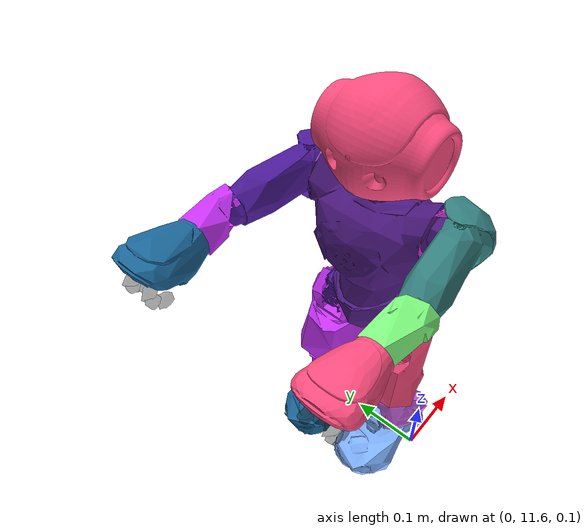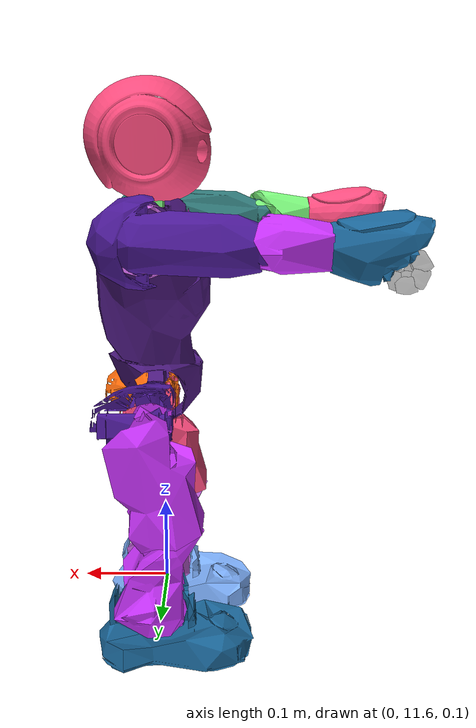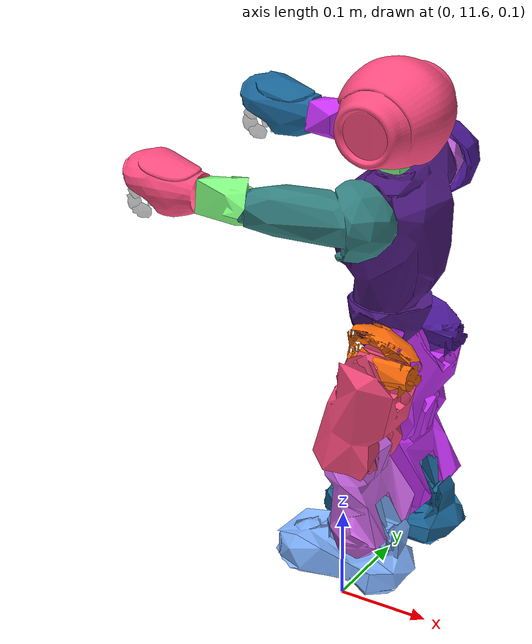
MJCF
<mujoco model="NaoH25V50">
  <compiler angle="radian" />

  <asset>
    <mesh name="HeadYaw_0.10" content_type="model/stl" file="nao_meshes/meshes/V40/HeadYaw_0.10.stl" scale="0.1 0.1 0.1" />
    <mesh name="HeadPitch_0.10" content_type="model/stl" file="nao_meshes/meshes/V40/HeadPitch_0.10.stl" scale="0.1 0.1 0.1" />
    <mesh name="LHipYawPitch_0.10" content_type="model/stl" file="nao_meshes/meshes/V40/LHipYawPitch_0.10.stl" scale="0.1 0.1 0.1" />
    <mesh name="LHipRoll_0.10" content_type="model/stl" file="nao_meshes/meshes/V40/LHipRoll_0.10.stl" scale="0.1 0.1 0.1" />
    <mesh name="LHipPitch_0.10" content_type="model/stl" file="nao_meshes/meshes/V40/LHipPitch_0.10.stl" scale="0.1 0.1 0.1" />
    <mesh name="LKneePitch_0.10" content_type="model/stl" file="nao_meshes/meshes/V40/LKneePitch_0.10.stl" scale="0.1 0.1 0.1" />
    <mesh name="LAnklePitch_0.10" content_type="model/stl" file="nao_meshes/meshes/V40/LAnklePitch_0.10.stl" scale="0.1 0.1 0.1" />
    <mesh name="LAnkleRoll_0.10" content_type="model/stl" file="nao_meshes/meshes/V40/LAnkleRoll_0.10.stl" scale="0.1 0.1 0.1" />
    <mesh name="RHipYawPitch_0.10" content_type="model/stl" file="nao_meshes/meshes/V40/RHipYawPitch_0.10.stl" scale="0.1 0.1 0.1" />
    <mesh name="RHipRoll_0.10" content_type="model/stl" file="nao_meshes/meshes/V40/RHipRoll_0.10.stl" scale="0.1 0.1 0.1" />
    <mesh name="RHipPitch_0.10" content_type="model/stl" file="nao_meshes/meshes/V40/RHipPitch_0.10.stl" scale="0.1 0.1 0.1" />
    <mesh name="RKneePitch_0.10" content_type="model/stl" file="nao_meshes/meshes/V40/RKneePitch_0.10.stl" scale="0.1 0.1 0.1" />
    <mesh name="RAnklePitch_0.10" content_type="model/stl" file="nao_meshes/meshes/V40/RAnklePitch_0.10.stl" scale="0.1 0.1 0.1" />
    <mesh name="RAnkleRoll_0.10" content_type="model/stl" file="nao_meshes/meshes/V40/RAnkleRoll_0.10.stl" scale="0.1 0.1 0.1" />
    <mesh name="Torso_0.10" content_type="model/stl" file="nao_meshes/meshes/V40/Torso_0.10.stl" scale="0.1 0.1 0.1" />
    <mesh name="LShoulderPitch_0.10" content_type="model/stl" file="nao_meshes/meshes/V40/LShoulderPitch_0.10.stl" scale="0.1 0.1 0.1" />
    <mesh name="LShoulderRoll_0.10" content_type="model/stl" file="nao_meshes/meshes/V40/LShoulderRoll_0.10.stl" scale="0.1 0.1 0.1" />
    <mesh name="LElbowRoll_0.10" content_type="model/stl" file="nao_meshes/meshes/V40/LElbowRoll_0.10.stl" scale="0.1 0.1 0.1" />
    <mesh name="LWristYaw_0.10" content_type="model/stl" file="nao_meshes/meshes/V40/LWristYaw_0.10.stl" scale="0.1 0.1 0.1" />
    <mesh name="RShoulderPitch_0.10" content_type="model/stl" file="nao_meshes/meshes/V40/RShoulderPitch_0.10.stl" scale="0.1 0.1 0.1" />
    <mesh name="RShoulderRoll_0.10" content_type="model/stl" file="nao_meshes/meshes/V40/RShoulderRoll_0.10.stl" scale="0.1 0.1 0.1" />
    <mesh name="RElbowRoll_0.10" content_type="model/stl" file="nao_meshes/meshes/V40/RElbowRoll_0.10.stl" scale="0.1 0.1 0.1" />
    <mesh name="RWristYaw_0.10" content_type="model/stl" file="nao_meshes/meshes/V40/RWristYaw_0.10.stl" scale="0.1 0.1 0.1" />
    <mesh name="RFinger13_0.10" content_type="model/stl" file="nao_meshes/meshes/V40/RFinger13_0.10.stl" scale="0.1 0.1 0.1" />
    <mesh name="RFinger12_0.10" content_type="model/stl" file="nao_meshes/meshes/V40/RFinger12_0.10.stl" scale="0.1 0.1 0.1" />
    <mesh name="LFinger21_0.10" content_type="model/stl" file="nao_meshes/meshes/V40/LFinger21_0.10.stl" scale="0.1 0.1 0.1" />
    <mesh name="LFinger13_0.10" content_type="model/stl" file="nao_meshes/meshes/V40/LFinger13_0.10.stl" scale="0.1 0.1 0.1" />
    <mesh name="LFinger11_0.10" content_type="model/stl" file="nao_meshes/meshes/V40/LFinger11_0.10.stl" scale="0.1 0.1 0.1" />
    <mesh name="RFinger22_0.10" content_type="model/stl" file="nao_meshes/meshes/V40/RFinger22_0.10.stl" scale="0.1 0.1 0.1" />
    <mesh name="LFinger22_0.10" content_type="model/stl" file="nao_meshes/meshes/V40/LFinger22_0.10.stl" scale="0.1 0.1 0.1" />
    <mesh name="RFinger21_0.10" content_type="model/stl" file="nao_meshes/meshes/V40/RFinger21_0.10.stl" scale="0.1 0.1 0.1" />
    <mesh name="LFinger12_0.10" content_type="model/stl" file="nao_meshes/meshes/V40/LFinger12_0.10.stl" scale="0.1 0.1 0.1" />
    <mesh name="RFinger23_0.10" content_type="model/stl" file="nao_meshes/meshes/V40/RFinger23_0.10.stl" scale="0.1 0.1 0.1" />
    <mesh name="RFinger11_0.10" content_type="model/stl" file="nao_meshes/meshes/V40/RFinger11_0.10.stl" scale="0.1 0.1 0.1" />
    <mesh name="LFinger23_0.10" content_type="model/stl" file="nao_meshes/meshes/V40/LFinger23_0.10.stl" scale="0.1 0.1 0.1" />
    <mesh name="LThumb1_0.10" content_type="model/stl" file="nao_meshes/meshes/V40/LThumb1_0.10.stl" scale="0.1 0.1 0.1" />
    <mesh name="RThumb1_0.10" content_type="model/stl" file="nao_meshes/meshes/V40/RThumb1_0.10.stl" scale="0.1 0.1 0.1" />
    <mesh name="RThumb2_0.10" content_type="model/stl" file="nao_meshes/meshes/V40/RThumb2_0.10.stl" scale="0.1 0.1 0.1" />
    <mesh name="LThumb2_0.10" content_type="model/stl" file="nao_meshes/meshes/V40/LThumb2_0.10.stl" scale="0.1 0.1 0.1" />
  </asset>

  <worldbody>
    <body name="nao_humanoid_C_UAID_047C163BA5E72CC302_2099765344__root" pos="4.263256414560601e-16 11.699999996839422 0.4397136615288111" quat="1.2167962698709443e-08 0 0 -0.9999999999999999"><freejoint name="nao_humanoid_C_UAID_047C163BA5E72CC302_2099765344_freejoint" /><geom type="mesh" contype="0" conaffinity="0" group="1" density="0" rgba="0.3 0.1 0.5 1" mesh="Torso_0.10" />
    <geom type="mesh" rgba="0.3 0.1 0.5 1" mesh="Torso_0.10" />
    <body name="Neck" pos="0 0 0.1265">
      <inertial pos="-1e-05 0 -0.02742" quat="0.70765 -0.00173495 0.00151894 0.706559" mass="0.07842" diaginertia="1.70396e-05 1.60324e-05 5.53348e-06" />
      <joint name="HeadYaw" pos="0 0 0" axis="0 0 1" range="-2.08567 2.08567" actuatorfrcrange="-1.547 1.547" />
      <geom type="mesh" contype="0" conaffinity="0" group="1" density="0" rgba="0.5 1 0.5 1" mesh="HeadYaw_0.10" />
      <geom type="mesh" rgba="0.5 1 0.5 1" mesh="HeadYaw_0.10" />
      <body name="Head">
        <inertial pos="-0.00112 0 0.05258" quat="0.463877 0.585354 -0.492966 0.446277" mass="0.60533" diaginertia="0.000990592 0.000957952 0.000811033" />
        <joint name="HeadPitch" pos="0 0 0" axis="0 1 0" range="-0.671952 0.514872" actuatorfrcrange="-1.532 1.532" />
        <geom type="mesh" contype="0" conaffinity="0" group="1" density="0" rgba="1 0.3 0.5 1" mesh="HeadPitch_0.10" />
        <geom type="mesh" rgba="1 0.3 0.5 1" mesh="HeadPitch_0.10" />
      </body>
    </body>
    <body name="LPelvis" pos="0 0.05 -0.085">
      <inertial pos="-0.00781 -0.01114 0.02661" quat="0.232303 0.656505 0.182148 0.69416" mass="0.06981" diaginertia="5.16414e-05 4.58792e-05 2.32239e-05" />
      <joint name="LHipYawPitch" pos="0 0 0" axis="0 0.707107 -0.707107" range="-1.14529 0.740718" actuatorfrcrange="-3.348 3.348" />
      <geom type="mesh" contype="0" conaffinity="0" group="1" density="0" rgba="1 0.423529 0.0392157 1" mesh="LHipYawPitch_0.10" />
      <geom type="mesh" rgba="1 0.423529 0.0392157 1" mesh="LHipYawPitch_0.10" />
      <body name="LHip">
        <inertial pos="-0.01549 0.00029 -0.00515" quat="0.453959 0.527953 0.574067 0.430853" mass="0.14053" diaginertia="6.08587e-05 5.59269e-05 2.22526e-05" />
        <joint name="LHipRoll" pos="0 0 0" axis="1 0 0" range="-0.379435 0.79046" actuatorfrcrange="-3.348 3.348" />
        <geom type="mesh" contype="0" conaffinity="0" group="1" density="0" rgba="1 0.423529 0.0392157 1" mesh="LHipRoll_0.10" />
        <geom type="mesh" rgba="1 0.423529 0.0392157 1" mesh="LHipRoll_0.10" />
        <body name="LThigh">
          <inertial pos="0.00138 0.00221 -0.05373" quat="0.992078 -0.0228023 -0.123519 -0.00190301" mass="0.38968" diaginertia="0.000524114 0.000465732 0.000286453" />
          <joint name="LHipPitch" pos="0 0 0" axis="0 1 0" range="-1.53589 0.48398" actuatorfrcrange="-3.023 3.023" />
          <geom type="mesh" contype="0" conaffinity="0" group="1" density="0" rgba="1 0.3 0.5 1" mesh="LHipPitch_0.10" />
          <geom type="mesh" rgba="1 0.3 0.5 1" mesh="LHipPitch_0.10" />
          <body name="LTibia" pos="0 0 -0.1">
            <inertial pos="0.00453 0.00225 -0.04936" quat="0.997907 0.0169027 0.0579417 0.0232071" mass="0.30142" diaginertia="0.000449928 0.000388139 0.000181704" />
            <joint name="LKneePitch" pos="0 0 0" axis="0 1 0" range="-0.0923279 2.11255" actuatorfrcrange="-3.023 3.023" />
            <geom type="mesh" contype="0" conaffinity="0" group="1" density="0" rgba="0.8 0.4 0.9 1" mesh="LKneePitch_0.10" />
            <geom type="mesh" rgba="0.8 0.4 0.9 1" mesh="LKneePitch_0.10" />
            <body name="LAnklePitch" pos="0 0 -0.1029">
              <inertial pos="0.00045 0.00029 0.00685" quat="0.447256 0.548803 0.537287 0.458368" mass="0.13416" diaginertia="6.79494e-05 5.56016e-05 3.14223e-05" />
              <joint name="LAnklePitch" pos="0 0 0" axis="0 1 0" range="-1.18944 0.922581" actuatorfrcrange="-3.023 3.023" />
              <geom type="mesh" contype="0" conaffinity="0" group="1" density="0" rgba="0.5 0.7 1 1" mesh="LAnklePitch_0.10" />
              <geom type="mesh" rgba="0.5 0.7 1 1" mesh="LAnklePitch_0.10" />
              <body name="l_ankle">
                <inertial pos="0.0254198 0.00330005 -0.0323906" quat="0.0134363 0.704739 -0.00974782 0.709273" mass="0.171848" diaginertia="0.000412891 0.000353334 8.70025e-05" />
                <joint name="LAnkleRoll" pos="0 0 0" axis="1 0 0" range="-0.397761 0.768992" actuatorfrcrange="-3.348 3.348" />
                <geom type="mesh" contype="0" conaffinity="0" group="1" density="0" rgba="0.5 0.7 1 1" mesh="LAnkleRoll_0.10" />
                <geom type="mesh" rgba="0.5 0.7 1 1" mesh="LAnkleRoll_0.10" />
                <geom size="0.005 0.005 0.0025" pos="0.07025 -0.0231 -0.04511" type="box" />
                <geom size="0.005 0.005 0.0025" pos="-0.02965 -0.0191 -0.04511" type="box" />
                <geom size="0.005 0.005 0.0025" pos="0.07025 0.0299 -0.04511" type="box" />
                <geom size="0.005 0.005 0.0025" pos="-0.03025 0.0299 -0.04511" type="box" />
              </body>
            </body>
          </body>
        </body>
      </body>
    </body>
    <body name="RPelvis" pos="0 -0.05 -0.085">
      <inertial pos="-0.00781 0.01114 0.02661" quat="-0.286295 0.637526 -0.200888 0.686469" mass="0.06981" diaginertia="6.0003e-05 4.60859e-05 3.15895e-05" />
      <joint name="RHipYawPitch" pos="0 0 0" axis="0 0.707107 0.707107" range="-1.14529 0.740718" actuatorfrcrange="-3.348 3.348" />
      <geom type="mesh" contype="0" conaffinity="0" group="1" density="0" rgba="0.3 0.1 0.6 1" mesh="RHipYawPitch_0.10" />
      <geom type="mesh" rgba="0.3 0.1 0.6 1" mesh="RHipYawPitch_0.10" />
      <body name="RHip">
        <inertial pos="-0.01549 -0.00029 -0.00515" quat="0.431269 0.573083 0.528698 0.453941" mass="0.14053" diaginertia="6.08554e-05 5.59208e-05 2.2268e-05" />
        <joint name="RHipRoll" pos="0 0 0" axis="1 0 0" range="-0.79046 0.379435" actuatorfrcrange="-3.348 3.348" />
        <geom type="mesh" contype="0" conaffinity="0" group="1" density="0" rgba="0.3 0.1 0.6 1" mesh="RHipRoll_0.10" />
        <geom type="mesh" rgba="0.3 0.1 0.6 1" mesh="RHipRoll_0.10" />
        <body name="RThigh">
          <inertial pos="0.00138 -0.00221 -0.05373" quat="0.99203 0.0205489 -0.124311 0.000726212" mass="0.38968" diaginertia="0.000525121 0.000466802 0.000286518" />
          <joint name="RHipPitch" pos="0 0 0" axis="0 1 0" range="-1.53589 0.48398" actuatorfrcrange="-3.0226 3.0226" />
          <geom type="mesh" contype="0" conaffinity="0" group="1" density="0" rgba="0.8 0.2 1 1" mesh="RHipPitch_0.10" />
          <geom type="mesh" rgba="0.8 0.2 1 1" mesh="RHipPitch_0.10" />
          <body name="RTibia" pos="0 0 -0.1">
            <inertial pos="0.00453 -0.00225 -0.04936" quat="0.99698 -0.0149083 0.0724691 -0.0235809" mass="0.30142" diaginertia="0.000452851 0.000387699 0.000177824" />
            <joint name="RKneePitch" pos="0 0 0" axis="0 1 0" range="-0.0923279 2.11255" actuatorfrcrange="-3.0226 3.0226" />
            <geom type="mesh" contype="0" conaffinity="0" group="1" density="0" rgba="0.8 0.2 1 1" mesh="RKneePitch_0.10" />
            <geom type="mesh" rgba="0.8 0.2 1 1" mesh="RKneePitch_0.10" />
            <body name="RAnklePitch" pos="0 0 -0.1029">
              <inertial pos="0.00045 -0.00029 0.00685" quat="0.458219 0.537985 0.54818 0.447332" mass="0.13416" diaginertia="6.79942e-05 5.56532e-05 3.14175e-05" />
              <joint name="RAnklePitch" pos="0 0 0" axis="0 1 0" range="-1.1863 0.932006" actuatorfrcrange="-3.0226 3.0226" />
              <geom type="mesh" contype="0" conaffinity="0" group="1" density="0" rgba="0.1 0.4 0.6 1" mesh="RAnklePitch_0.10" />
              <geom type="mesh" rgba="0.1 0.4 0.6 1" mesh="RAnklePitch_0.10" />
              <body name="r_ankle">
                <inertial pos="0.0254198 -0.00330005 -0.0323906" quat="-0.0138336 0.704473 0.00894574 0.70954" mass="0.171848" diaginertia="0.000412175 0.000352454 8.68701e-05" />
                <joint name="RAnkleRoll" pos="0 0 0" axis="1 0 0" range="-0.768992 0.397761" actuatorfrcrange="-3.348 3.348" />
                <geom type="mesh" contype="0" conaffinity="0" group="1" density="0" rgba="0.1 0.4 0.6 1" mesh="RAnkleRoll_0.10" />
                <geom type="mesh" rgba="0.1 0.4 0.6 1" mesh="RAnkleRoll_0.10" />
                <geom size="0.005 0.005 0.0025" pos="-0.03025 0.0191 -0.04511" type="box" />
                <geom size="0.005 0.005 0.0025" pos="-0.02965 -0.0299 -0.04511" type="box" />
                <geom size="0.005 0.005 0.0025" pos="0.07025 -0.0299 -0.04511" type="box" />
                <geom size="0.005 0.005 0.0025" pos="0.07025 0.0231 -0.04511" type="box" />
              </body>
            </body>
          </body>
        </body>
      </body>
    </body>
    <body name="LShoulder" pos="0 0.098 0.1">
      <inertial pos="-0.00165 -0.02663 0.00014" quat="0.353499 0.572853 -0.442525 0.592494" mass="0.09304" diaginertia="2.02186e-05 1.91002e-05 1.30704e-05" />
      <joint name="LShoulderPitch" pos="0 0 0" axis="0 1 0" range="-2.08567 2.08567" actuatorfrcrange="-1.329 1.329" />
      <geom type="mesh" contype="0" conaffinity="0" group="1" density="0" rgba="0.8 0.2 0.8 1" mesh="LShoulderPitch_0.10" />
      <geom type="mesh" rgba="0.8 0.2 0.8 1" mesh="LShoulderPitch_0.10" />
      <body name="LBicep">
        <inertial pos="0.02455 0.00563 0.0033" quat="0.467645 0.46185 0.492756 0.570257" mass="0.15777" diaginertia="0.00027823 0.000242894 8.25818e-05" />
        <joint name="LShoulderRoll" pos="0 0 0" axis="0 0 1" range="-0.314159 1.32645" actuatorfrcrange="-1.7835 1.7835" />
        <geom type="mesh" contype="0" conaffinity="0" group="1" density="0" rgba="0.2 0.5 0.5 1" mesh="LShoulderRoll_0.10" />
        <geom type="mesh" rgba="0.2 0.5 0.5 1" mesh="LShoulderRoll_0.10" />
        <body name="LElbow" pos="0.105 0.015 0">
          <inertial pos="-0.02744 0 -0.00014" quat="-0.000545392 0.711779 -0.000696018 0.702403" mass="0.06483" diaginertia="2.76333e-05 2.66179e-05 5.592e-06" />
          <joint name="LElbowYaw" pos="0 0 0" axis="1 0 0" range="-2.08567 2.08567" actuatorfrcrange="-1.547 1.547" />
          <body name="LForeArm">
            <inertial pos="0.02556 0.00281 0.00076" quat="0.481839 0.619088 0.422287 0.454131" mass="0.07761" diaginertia="3.9183e-05 3.6083e-05 2.37632e-05" />
            <joint name="LElbowRoll" pos="0 0 0" axis="0 0 1" range="-1.54462 -0.0349066" actuatorfrcrange="-1.532 1.532" />
            <geom type="mesh" contype="0" conaffinity="0" group="1" density="0" rgba="0.5 1 0.5 1" mesh="LElbowRoll_0.10" />
            <geom type="mesh" rgba="0.5 1 0.5 1" mesh="LElbowRoll_0.10" />
            <body name="l_wrist" pos="0.05595 0 0">
              <inertial pos="0.03434 -0.00088 0.00308" quat="0.346526 0.607704 0.329318 0.634165" mass="0.18533" diaginertia="0.000137482 0.000131631 6.85194e-05" />
              <joint name="LWristYaw" pos="0 0 0" axis="1 0 0" range="-1.82387 1.82387" actuatorfrcrange="-0.4075 0.4075" />
              <geom type="mesh" contype="0" conaffinity="0" group="1" density="0" rgba="1 0.3 0.5 1" mesh="LWristYaw_0.10" />
              <geom type="mesh" rgba="1 0.3 0.5 1" mesh="LWristYaw_0.10" />
              <body name="l_gripper" pos="0.05775 0 -0.01231">
                <inertial pos="0 0 0" mass="2e-06" diaginertia="1.1e-09 1.1e-09 1.1e-09" />
                <joint name="LHand" pos="0 0 0" axis="1 0 0" range="0 1" actuatorfrcrange="-0.292 0.292" />
              </body>
              <body name="LFinger21_link" pos="0.06907 -0.01157 -0.00304" quat="0.672286 0.564114 0.308141 -0.367227">
                <inertial pos="0 0 0" mass="2e-06" diaginertia="1.1e-09 1.1e-09 1.1e-09" />
                <joint name="LFinger21" pos="0 0 0" axis="0 0 1" />
                <geom type="mesh" contype="0" conaffinity="0" group="1" density="0" rgba="0.1 0.1 0.1 0.4" mesh="LFinger21_0.10" />
                <geom type="mesh" rgba="0.1 0.1 0.1 0.4" mesh="LFinger21_0.10" />
                <body name="LFinger22_link" pos="0.01436 0 0" quat="0.877607 0 0 -0.479381">
                  <inertial pos="0 0 0" mass="2e-06" diaginertia="1.1e-09 1.1e-09 1.1e-09" />
                  <joint name="LFinger22" pos="0 0 0" axis="0 0 1" />
                  <geom type="mesh" contype="0" conaffinity="0" group="1" density="0" rgba="0.1 0.1 0.1 0.4" mesh="LFinger22_0.10" />
                  <geom type="mesh" rgba="0.1 0.1 0.1 0.4" mesh="LFinger22_0.10" />
                  <body name="LFinger23_link" pos="0.01436 0 0" quat="0.877607 0 0 -0.479381">
                    <inertial pos="0 0 0" mass="2e-06" diaginertia="1.1e-09 1.1e-09 1.1e-09" />
                    <joint name="LFinger23" pos="0 0 0" axis="0 0 1" />
                    <geom type="mesh" contype="0" conaffinity="0" group="1" density="0" rgba="0.1 0.1 0.1 0.4" mesh="LFinger23_0.10" />
                    <geom type="mesh" rgba="0.1 0.1 0.1 0.4" mesh="LFinger23_0.10" />
                  </body>
                </body>
              </body>
              <body name="LFinger11_link" pos="0.06907 0.01157 -0.00304" quat="0.564115 0.672285 0.367228 -0.30814">
                <inertial pos="0 0 0" mass="2e-06" diaginertia="1.1e-09 1.1e-09 1.1e-09" />
                <joint name="LFinger11" pos="0 0 0" axis="0 0 1" />
                <geom type="mesh" contype="0" conaffinity="0" group="1" density="0" rgba="0.1 0.1 0.1 0.4" mesh="LFinger11_0.10" />
                <geom type="mesh" rgba="0.1 0.1 0.1 0.4" mesh="LFinger11_0.10" />
                <body name="LFinger12_link" pos="0.01436 0 0" quat="0.877607 0 0 -0.479381">
                  <inertial pos="0 0 0" mass="2e-06" diaginertia="1.1e-09 1.1e-09 1.1e-09" />
                  <joint name="LFinger12" pos="0 0 0" axis="0 0 1" />
                  <geom type="mesh" contype="0" conaffinity="0" group="1" density="0" rgba="0.1 0.1 0.1 0.4" mesh="LFinger12_0.10" />
                  <geom type="mesh" rgba="0.1 0.1 0.1 0.4" mesh="LFinger12_0.10" />
                  <body name="LFinger13_link" pos="0.01436 0 0" quat="0.877607 0 0 -0.479381">
                    <inertial pos="0 0 0" mass="2e-06" diaginertia="1.1e-09 1.1e-09 1.1e-09" />
                    <joint name="LFinger13" pos="0 0 0" axis="0 0 1" />
                    <geom type="mesh" contype="0" conaffinity="0" group="1" density="0" rgba="0.1 0.1 0.1 0.4" mesh="LFinger13_0.10" />
                    <geom type="mesh" rgba="0.1 0.1 0.1 0.4" mesh="LFinger13_0.10" />
                  </body>
                </body>
              </body>
              <body name="LThumb1_link" pos="0.04895 0 -0.02638" quat="0.706908 -0.70691 0.0167209 0.016721">
                <inertial pos="0 0 0" mass="2e-06" diaginertia="1.1e-09 1.1e-09 1.1e-09" />
                <joint name="LThumb1" pos="0 0 0" axis="0 0 1" />
                <geom type="mesh" contype="0" conaffinity="0" group="1" density="0" rgba="0.1 0.1 0.1 0.4" mesh="LThumb1_0.10" />
                <geom type="mesh" rgba="0.1 0.1 0.1 0.4" mesh="LThumb1_0.10" />
                <body name="LThumb2_link" pos="0.01436 0 0" quat="0.877607 0 0 -0.479381">
                  <inertial pos="0 0 0" mass="2e-06" diaginertia="1.1e-09 1.1e-09 1.1e-09" />
                  <joint name="LThumb2" pos="0 0 0" axis="0 0 1" />
                  <geom type="mesh" contype="0" conaffinity="0" group="1" density="0" rgba="0.1 0.1 0.1 0.4" mesh="LThumb2_0.10" />
                  <geom type="mesh" rgba="0.1 0.1 0.1 0.4" mesh="LThumb2_0.10" />
                </body>
              </body>
            </body>
          </body>
        </body>
      </body>
    </body>
    <body name="RShoulder" pos="0 -0.098 0.1">
      <inertial pos="-0.00165 0.02663 0.00014" quat="0.572853 0.353499 -0.592494 0.442525" mass="0.09304" diaginertia="2.02186e-05 1.91002e-05 1.30704e-05" />
      <joint name="RShoulderPitch" pos="0 0 0" axis="0 1 0" range="-2.08567 2.08567" actuatorfrcrange="-1.329 1.329" />
      <geom type="mesh" contype="0" conaffinity="0" group="1" density="0" rgba="0.8 0.4 0.9 1" mesh="RShoulderPitch_0.10" />
      <geom type="mesh" rgba="0.8 0.4 0.9 1" mesh="RShoulderPitch_0.10" />
      <body name="RBicep">
        <inertial pos="0.02455 -0.00563 0.0033" quat="0.556969 0.570609 0.359404 0.484788" mass="0.15777" diaginertia="0.000287934 0.00025515 8.56154e-05" />
        <joint name="RShoulderRoll" pos="0 0 0" axis="0 0 1" range="-1.32645 0.314159" actuatorfrcrange="-1.783 1.783" />
        <geom type="mesh" contype="0" conaffinity="0" group="1" density="0" rgba="0.3 0.1 0.6 1" mesh="RShoulderRoll_0.10" />
        <geom type="mesh" rgba="0.3 0.1 0.6 1" mesh="RShoulderRoll_0.10" />
        <body name="RElbow" pos="0.105 -0.015 0">
          <inertial pos="-0.02744 0 -0.00014" quat="-0.000545392 0.711779 -0.000696018 0.702403" mass="0.06483" diaginertia="2.76333e-05 2.66179e-05 5.592e-06" />
          <joint name="RElbowYaw" pos="0 0 0" axis="1 0 0" range="-2.08567 2.08567" actuatorfrcrange="-1.547 1.547" />
          <body name="RForeArm">
            <inertial pos="0.02556 -0.00281 0.00076" quat="0.453039 0.428011 0.593606 0.509111" mass="0.07761" diaginertia="3.92326e-05 3.59586e-05 2.39457e-05" />
            <joint name="RElbowRoll" pos="0 0 0" axis="0 0 1" range="0.0349066 1.54462" actuatorfrcrange="-1.532 1.532" />
            <geom type="mesh" contype="0" conaffinity="0" group="1" density="0" rgba="0.8 0.2 1 1" mesh="RElbowRoll_0.10" />
            <geom type="mesh" rgba="0.8 0.2 1 1" mesh="RElbowRoll_0.10" />
            <body name="r_wrist" pos="0.05595 0 0">
              <inertial pos="0.03434 0.00088 0.00308" quat="0.422432 0.617987 0.303847 0.589339" mass="0.18533" diaginertia="0.000139307 0.000131711 6.66137e-05" />
              <joint name="RWristYaw" pos="0 0 0" axis="1 0 0" range="-1.82387 1.82387" actuatorfrcrange="-0.4075 0.4075" />
              <geom type="mesh" contype="0" conaffinity="0" group="1" density="0" rgba="0.1 0.4 0.6 1" mesh="RWristYaw_0.10" />
              <geom type="mesh" rgba="0.1 0.4 0.6 1" mesh="RWristYaw_0.10" />
              <body name="r_gripper" pos="0.05775 0 -0.01213">
                <inertial pos="0 0 0" mass="2e-06" diaginertia="1.1e-09 1.1e-09 1.1e-09" />
                <joint name="RHand" pos="0 0 0" axis="1 0 0" range="0 1" actuatorfrcrange="-0.292 0.292" />
              </body>
              <body name="RFinger21_link" pos="0.06907 -0.01157 -0.00304" quat="0.672286 0.564114 0.308141 -0.367227">
                <inertial pos="0 0 0" mass="2e-06" diaginertia="1.1e-09 1.1e-09 1.1e-09" />
                <joint name="RFinger21" pos="0 0 0" axis="0 0 1" />
                <geom type="mesh" contype="0" conaffinity="0" group="1" density="0" rgba="0.1 0.1 0.1 0.4" mesh="RFinger21_0.10" />
                <geom type="mesh" rgba="0.1 0.1 0.1 0.4" mesh="RFinger21_0.10" />
                <body name="RFinger22_link" pos="0.01436 0 0" quat="0.877607 0 0 -0.479381">
                  <inertial pos="0 0 0" mass="2e-06" diaginertia="1.1e-09 1.1e-09 1.1e-09" />
                  <joint name="RFinger22" pos="0 0 0" axis="0 0 1" />
                  <geom type="mesh" contype="0" conaffinity="0" group="1" density="0" rgba="0.1 0.1 0.1 0.4" mesh="RFinger22_0.10" />
                  <geom type="mesh" rgba="0.1 0.1 0.1 0.4" mesh="RFinger22_0.10" />
                  <body name="RFinger23_link" pos="0.01436 0 0" quat="0.877607 0 0 -0.479381">
                    <inertial pos="0 0 0" mass="2e-06" diaginertia="1.1e-09 1.1e-09 1.1e-09" />
                    <joint name="RFinger23" pos="0 0 0" axis="0 0 1" />
                    <geom type="mesh" contype="0" conaffinity="0" group="1" density="0" rgba="0.1 0.1 0.1 0.4" mesh="RFinger23_0.10" />
                    <geom type="mesh" rgba="0.1 0.1 0.1 0.4" mesh="RFinger23_0.10" />
                  </body>
                </body>
              </body>
              <body name="RFinger11_link" pos="0.06907 0.01157 -0.00304" quat="0.564115 0.672285 0.367228 -0.30814">
                <inertial pos="0 0 0" mass="2e-06" diaginertia="1.1e-09 1.1e-09 1.1e-09" />
                <joint name="RFinger11" pos="0 0 0" axis="0 0 1" />
                <geom type="mesh" contype="0" conaffinity="0" group="1" density="0" rgba="0.1 0.1 0.1 0.4" mesh="RFinger11_0.10" />
                <geom type="mesh" rgba="0.1 0.1 0.1 0.4" mesh="RFinger11_0.10" />
                <body name="RFinger12_link" pos="0.01436 0 0" quat="0.877607 0 0 -0.479381">
                  <inertial pos="0 0 0" mass="2e-06" diaginertia="1.1e-09 1.1e-09 1.1e-09" />
                  <joint name="RFinger12" pos="0 0 0" axis="0 0 1" />
                  <geom type="mesh" contype="0" conaffinity="0" group="1" density="0" rgba="0.1 0.1 0.1 0.4" mesh="RFinger12_0.10" />
                  <geom type="mesh" rgba="0.1 0.1 0.1 0.4" mesh="RFinger12_0.10" />
                  <body name="RFinger13_link" pos="0.01436 0 0" quat="0.877607 0 0 -0.479381">
                    <inertial pos="0 0 0" mass="2e-06" diaginertia="1.1e-09 1.1e-09 1.1e-09" />
                    <joint name="RFinger13" pos="0 0 0" axis="0 0 1" />
                    <geom type="mesh" contype="0" conaffinity="0" group="1" density="0" rgba="0.1 0.1 0.1 0.4" mesh="RFinger13_0.10" />
                    <geom type="mesh" rgba="0.1 0.1 0.1 0.4" mesh="RFinger13_0.10" />
                  </body>
                </body>
              </body>
              <body name="RThumb1_link" pos="0.04895 0 -0.02638" quat="0.706908 -0.70691 0.0167209 0.016721">
                <inertial pos="0 0 0" mass="2e-06" diaginertia="1.1e-09 1.1e-09 1.1e-09" />
                <joint name="RThumb1" pos="0 0 0" axis="0 0 1" />
                <geom type="mesh" contype="0" conaffinity="0" group="1" density="0" rgba="0.1 0.1 0.1 0.4" mesh="RThumb1_0.10" />
                <geom type="mesh" rgba="0.1 0.1 0.1 0.4" mesh="RThumb1_0.10" />
                <body name="RThumb2_link" pos="0.01436 0 0" quat="0.877607 0 0 -0.479381">
                  <inertial pos="0 0 0" mass="2e-06" diaginertia="1.1e-09 1.1e-09 1.1e-09" />
                  <joint name="RThumb2" pos="0 0 0" axis="0 0 1" />
                  <geom type="mesh" contype="0" conaffinity="0" group="1" density="0" rgba="0.1 0.1 0.1 0.4" mesh="RThumb2_0.10" />
                  <geom type="mesh" rgba="0.1 0.1 0.1 0.4" mesh="RThumb2_0.10" />
                </body>
              </body>
            </body>
          </body>
        </body>
      </body>
    </body>
  </body></worldbody>
</mujoco>
